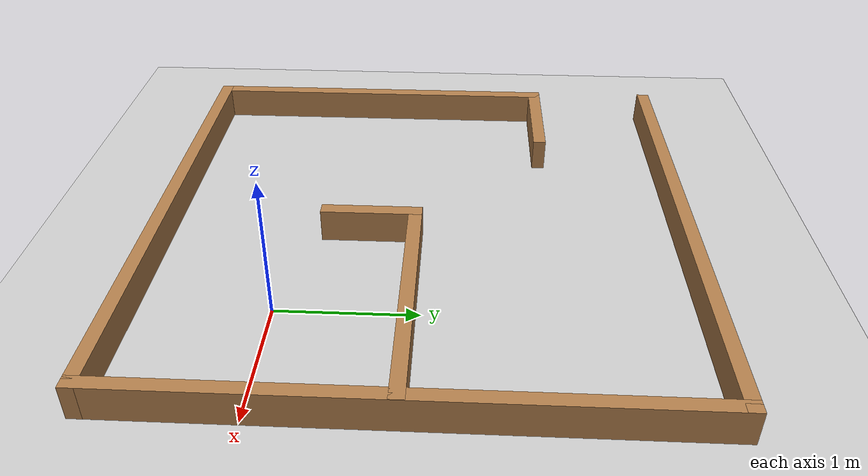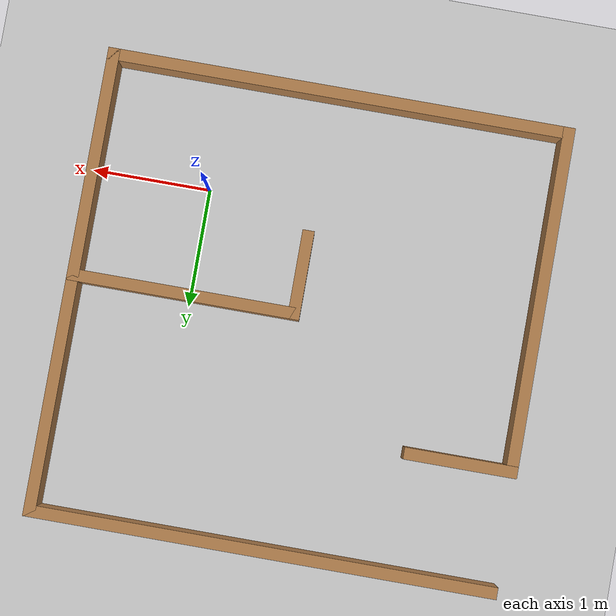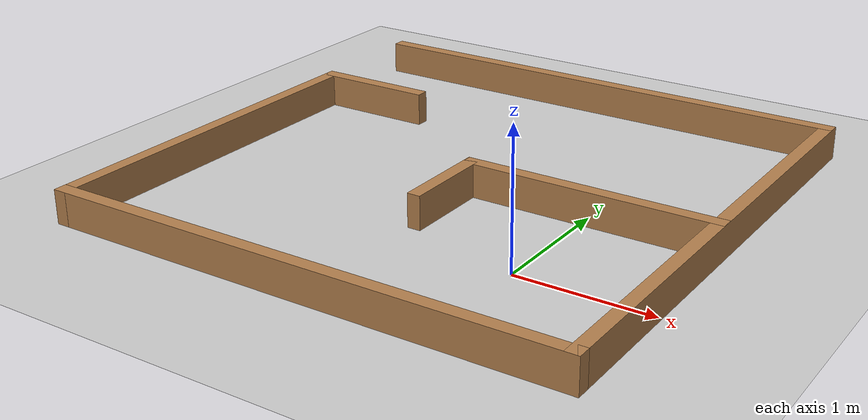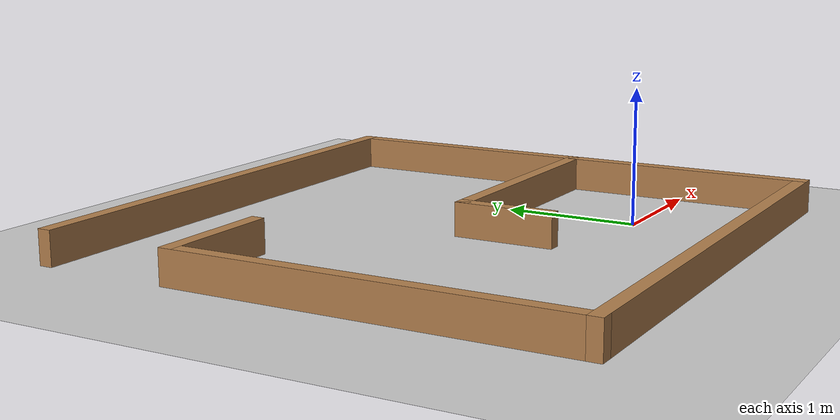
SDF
<sdf version="1.7">
 <world name="default">
  <light name="sun" type="directional">
   <pose>0 0 10 0 -0 0</pose>
   <diffuse>0.8 0.8 0.8 1</diffuse>
   <specular>0.2 0.2 0.2 1</specular>
   <attenuation>
    <range>1000</range>
    <constant>0.9</constant>
    <linear>0.01</linear>
    <quadratic>0.001</quadratic>
   </attenuation>
   <direction>-0.5 0.1 -0.9</direction>
   <spot><inner_angle>0</inner_angle><outer_angle>0</outer_angle><falloff>0</falloff></spot>
  </light>
  <model name="ground_plane">
   <static>1</static>
   <link name="link">
    <collision name="collision">
     <geometry><plane><normal>0 0 1</normal><size>100 100</size></plane></geometry>
     <surface>
      <contact><collide_bitmask>65535</collide_bitmask></contact>
      <friction><ode><mu>100</mu><mu2>50</mu2></ode></friction>
     </surface>
    </collision>
    <visual name="visual">
     <cast_shadows>0</cast_shadows>
     <geometry><plane><normal>0 0 1</normal><size>100 100</size></plane></geometry>
     <material>
      <script><uri>file://media/materials/scripts/gazebo.material</uri><name>Gazebo/Grey</name></script>
     </material>
    </visual>
   </link>
  </model>
  <gravity>0 0 -9.8</gravity>
  <magnetic_field>6e-06 2.3e-05 -4.2e-05</magnetic_field>
  <atmosphere type="adiabatic"/>
  <physics type="ode">
   <max_step_size>0.001</max_step_size>
   <real_time_factor>1</real_time_factor>
   <real_time_update_rate>1000</real_time_update_rate>
  </physics>
  <scene><ambient>0.4 0.4 0.4 1</ambient><background>0.7 0.7 0.7 1</background><shadows>1</shadows></scene>
  <audio><device>default</device></audio>
  <spherical_coordinates>
   <surface_model>EARTH_WGS84</surface_model>
   <latitude_deg>0</latitude_deg>
   <longitude_deg>0</longitude_deg>
   <elevation>0</elevation>
   <heading_deg>0</heading_deg>
  </spherical_coordinates>
  <model name="my_project_model">
   <pose>-0.95332 1.81659 0 0 -0 0</pose>
   <link name="Wall_1">
    <collision name="Wall_1_Collision">
     <geometry><box><size>3.95 0.1 0.25</size></box></geometry>
     <pose>0 0 0.125 0 -0 0</pose>
    </collision>
    <visual name="Wall_1_Visual">
     <pose>0 0 0.125 0 -0 0</pose>
     <geometry><box><size>3.95 0.1 0.25</size></box></geometry>
     <material>
      <script><uri>file://media/materials/scripts/gazebo.material</uri><name>Gazebo/Wood</name></script>
      <ambient>1 1 1 1</ambient>
     </material>
     <meta><layer>0</layer></meta>
    </visual>
    <pose>-0 1.075 0 0 -0 0</pose>
   </link>
   <link name="Wall_13">
    <collision name="Wall_13_Collision">
     <geometry><box><size>1.95 0.1 0.25</size></box></geometry>
     <pose>0 0 0.125 0 -0 0</pose>
    </collision>
    <visual name="Wall_13_Visual">
     <pose>0 0 0.125 0 -0 0</pose>
     <geometry><box><size>1.95 0.1 0.25</size></box></geometry>
     <material>
      <script><uri>file://media/materials/scripts/gazebo.material</uri><name>Gazebo/Wood</name></script>
      <ambient>1 1 1 1</ambient>
     </material>
     <meta><layer>0</layer></meta>
    </visual>
    <pose>0.99613 -0.901 0 0 -0 3.14159</pose>
   </link>
   <link name="Wall_15">
    <collision name="Wall_15_Collision">
     <geometry><box><size>0.75 0.1 0.25</size></box></geometry>
     <pose>0 0 0.125 0 -0 0</pose>
    </collision>
    <visual name="Wall_15_Visual">
     <pose>0 0 0.125 0 -0 0</pose>
     <geometry><box><size>0.75 0.1 0.25</size></box></geometry>
     <material>
      <script><uri>file://media/materials/scripts/gazebo.material</uri><name>Gazebo/Wood</name></script>
      <ambient>1 1 1 1</ambient>
     </material>
     <meta><layer>0</layer></meta>
    </visual>
    <pose>0.065412 -1.226 0 0 -0 -1.5708</pose>
   </link>
   <link name="Wall_3">
    <collision name="Wall_3_Collision">
     <geometry><box><size>3.95 0.1 0.25</size></box></geometry>
     <pose>0 0 0.125 0 -0 0</pose>
    </collision>
    <visual name="Wall_3_Visual">
     <pose>0 0 0.125 0 -0 0</pose>
     <geometry><box><size>3.95 0.1 0.25</size></box></geometry>
     <material>
      <script><uri>file://media/materials/scripts/gazebo.material</uri><name>Gazebo/Wood</name></script>
      <ambient>1 1 1 1</ambient>
     </material>
     <meta><layer>0</layer></meta>
    </visual>
    <pose>1.925 -0.85 0 0 -0 -1.5708</pose>
   </link>
   <link name="Wall_6">
    <collision name="Wall_6_Collision">
     <geometry><box><size>3.95 0.1 0.25</size></box></geometry>
     <pose>0 0 0.125 0 -0 0</pose>
    </collision>
    <visual name="Wall_6_Visual">
     <pose>0 0 0.125 0 -0 0</pose>
     <geometry><box><size>3.95 0.1 0.25</size></box></geometry>
     <material>
      <script><uri>file://media/materials/scripts/gazebo.material</uri><name>Gazebo/Wood</name></script>
      <ambient>1 1 1 1</ambient>
     </material>
     <meta><layer>0</layer></meta>
    </visual>
    <pose>-0 -2.775 0 0 -0 3.14159</pose>
   </link>
   <link name="Wall_7">
    <collision name="Wall_7_Collision">
     <geometry><box><size>2.95 0.1 0.25</size></box></geometry>
     <pose>0 0 0.125 0 -0 0</pose>
    </collision>
    <visual name="Wall_7_Visual">
     <pose>0 0 0.125 0 -0 0</pose>
     <geometry><box><size>2.95 0.1 0.25</size></box></geometry>
     <material>
      <script><uri>file://media/materials/scripts/gazebo.material</uri><name>Gazebo/Wood</name></script>
      <ambient>1 1 1 1</ambient>
     </material>
     <meta><layer>0</layer></meta>
    </visual>
    <pose>-1.925 -1.35 0 0 -0 1.5708</pose>
   </link>
   <link name="Wall_9">
    <collision name="Wall_9_Collision">
     <geometry><box><size>0.95 0.1 0.25</size></box></geometry>
     <pose>0 0 0.125 0 -0 0</pose>
    </collision>
    <visual name="Wall_9_Visual">
     <pose>0 0 0.125 0 -0 0</pose>
     <geometry><box><size>0.95 0.1 0.25</size></box></geometry>
     <material>
      <script><uri>file://media/materials/scripts/gazebo.material</uri><name>Gazebo/Wood</name></script>
      <ambient>1 1 1 1</ambient>
     </material>
     <meta><layer>0</layer></meta>
    </visual>
    <pose>-1.5 0.075 0 0 -0 0</pose>
   </link>
   <static>1</static>
  </model>
 </world>
</sdf>
